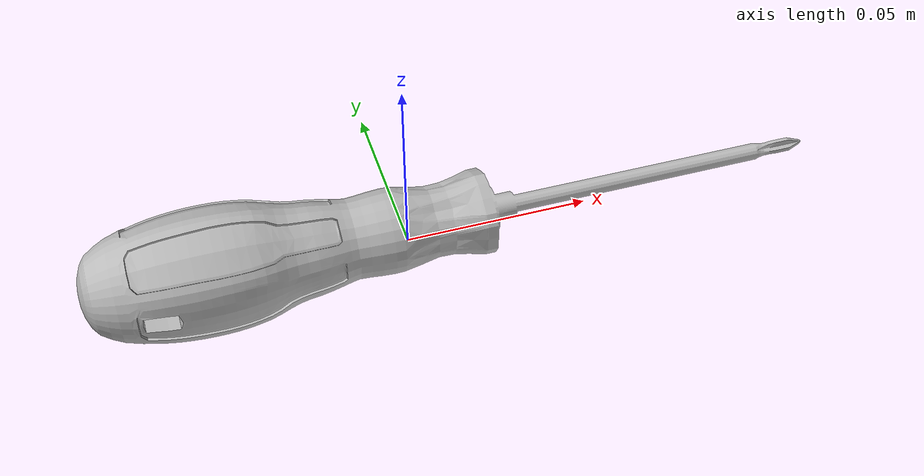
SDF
<sdf version="1.6">
  <model name="screwdriver4">
    <link name="link">
      <pose frame="">-0 0 0.005 0 -0 0</pose>
      <inertial>
        <mass>0.0125</mass>
        <inertia>
          <ixx>7.6e-07</ixx>
          <ixy>0</ixy>
          <ixz>0</ixz>
          <iyy>1.052e-05</iyy>
          <iyz>0</iyz>
          <izz>1.107e-05</izz>
        </inertia>
        <pose frame="">0 0 0 0 -0 0</pose>
      </inertial>
      <self_collide>0</self_collide>
      <kinematic>0</kinematic>
      <gravity>1</gravity>
      <visual name="visual">
        <geometry>
          <mesh>
            <uri>/home/zisu/simulator/siemens_challenge/sim_world/toolbox/screwdriver4.obj</uri>
            <scale>1.3207509790066632 1.3207509790066632 1.3207509790066632</scale>
          </mesh>
        </geometry>
        <pose frame="">0 0 0 0 -0 0</pose>
        <transparency>0</transparency>
        <cast_shadows>0</cast_shadows>
      </visual>
      <collision name="collision">
        <laser_retro>0</laser_retro>
        <max_contacts>10</max_contacts>
        <pose frame="">0.01469665651889664 -8.386768716692495e-05 -3.3018774475139916e-06 0 0 0</pose>
        <geometry>
          <box>
            <size>0.2 0.032333304717062125 0.03445443078934682</size>
          </box>
        </geometry>
        <surface>
          <friction>
            <ode>
              <mu>1</mu>
              <mu2>1</mu2>
              <fdir1>0 0 0</fdir1>
              <slip1>0</slip1>
              <slip2>0</slip2>
            </ode>
            <torsional>
              <coefficient>1</coefficient>
              <patch_radius>0</patch_radius>
              <surface_radius>0.05</surface_radius>
              <use_patch_radius>0</use_patch_radius>
              <ode>
                <slip>0</slip>
              </ode>
            </torsional>
          </friction>
          <bounce>
            <restitution_coefficient>0</restitution_coefficient>
            <threshold>1e+06</threshold>
          </bounce>
          <contact>
            <collide_without_contact>0</collide_without_contact>
            <collide_without_contact_bitmask>1</collide_without_contact_bitmask>
            <collide_bitmask>1</collide_bitmask>
            <ode>
              <soft_cfm>0</soft_cfm>
              <soft_erp>0.2</soft_erp>
              <kp>100000</kp>
              <kd>1</kd>
              <max_vel>1</max_vel>
              <min_depth>0.001</min_depth>
            </ode>
            <bullet>
              <split_impulse>1</split_impulse>
              <split_impulse_penetration_threshold>-0.01</split_impulse_penetration_threshold>
              <soft_cfm>0</soft_cfm>
              <soft_erp>0.2</soft_erp>
              <kp>100000</kp>
              <kd>1</kd>
            </bullet>
          </contact>
        </surface>
      </collision>
    </link>
    <static>0</static>
    <allow_auto_disable>1</allow_auto_disable>
  </model>
</sdf>
